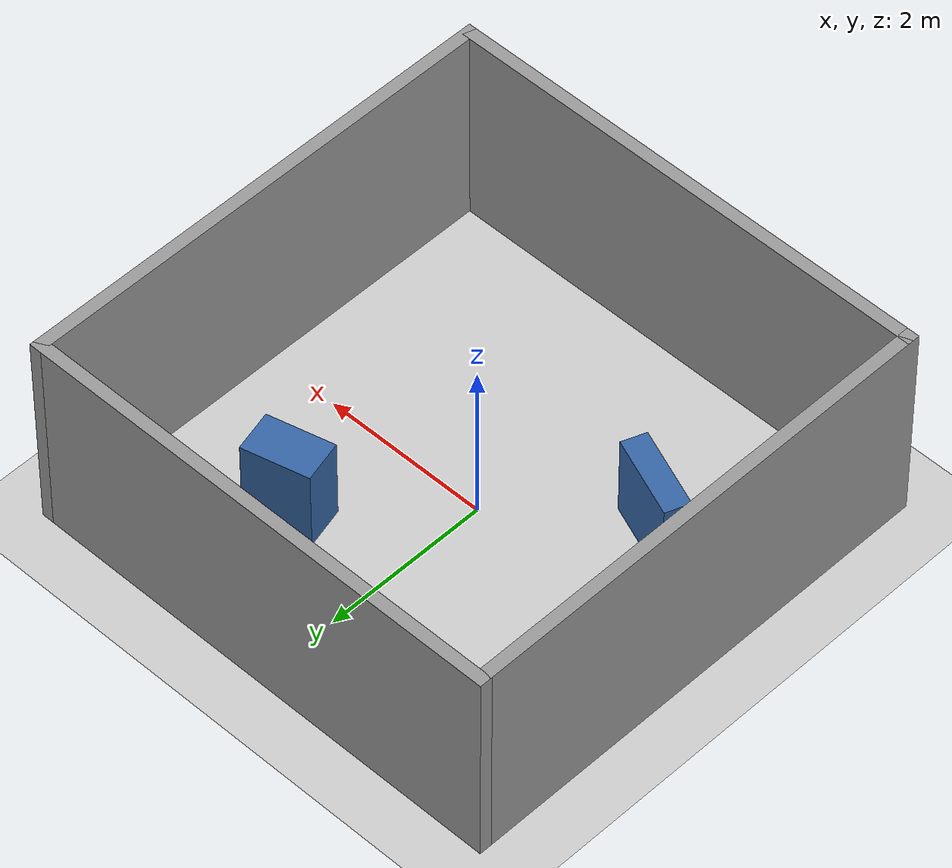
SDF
<sdf version="1.7">
 <world name="default">
  <light name="sun" type="directional">
   <pose>0 0 10 0 -0 0</pose>
   <diffuse>0.8 0.8 0.8 1</diffuse>
   <specular>0.2 0.2 0.2 1</specular>
   <attenuation>
    <range>1000</range>
    <constant>0.9</constant>
    <linear>0.01</linear>
    <quadratic>0.001</quadratic>
   </attenuation>
   <direction>-0.5 0.1 -0.9</direction>
   <spot><inner_angle>0</inner_angle><outer_angle>0</outer_angle><falloff>0</falloff></spot>
  </light>
  <model name="ground_plane">
   <static>1</static>
   <link name="link">
    <collision name="collision">
     <geometry><plane><normal>0 0 1</normal><size>100 100</size></plane></geometry>
     <surface>
      <contact><collide_bitmask>65535</collide_bitmask></contact>
      <friction><ode><mu>100</mu><mu2>50</mu2></ode></friction>
     </surface>
    </collision>
    <visual name="visual">
     <cast_shadows>0</cast_shadows>
     <geometry><plane><normal>0 0 1</normal><size>100 100</size></plane></geometry>
     <material>
      <script><uri>file://media/materials/scripts/gazebo.material</uri><name>Gazebo/Grey</name></script>
     </material>
    </visual>
   </link>
  </model>
  <gravity>0 0 -9.8</gravity>
  <magnetic_field>6e-06 2.3e-05 -4.2e-05</magnetic_field>
  <atmosphere type="adiabatic"/>
  <physics type="ode">
   <max_step_size>0.001</max_step_size>
   <real_time_factor>1</real_time_factor>
   <real_time_update_rate>1000</real_time_update_rate>
  </physics>
  <scene><ambient>0.4 0.4 0.4 1</ambient><background>0.7 0.7 0.7 1</background><shadows>1</shadows></scene>
  <spherical_coordinates>
   <surface_model>EARTH_WGS84</surface_model>
   <latitude_deg>0</latitude_deg>
   <longitude_deg>0</longitude_deg>
   <elevation>0</elevation>
   <heading_deg>0</heading_deg>
  </spherical_coordinates>
  <model name="wall_6_6">
   <pose>0.017248 0.01537 0 0 -0 0</pose>
   <link name="Wall_10">
    <collision name="Wall_10_Collision">
     <geometry><box><size>6 0.15 2.5</size></box></geometry>
     <pose>0 0 1.25 0 -0 0</pose>
    </collision>
    <visual name="Wall_10_Visual">
     <pose>0 0 1.25 0 -0 0</pose>
     <geometry><box><size>6 0.15 2.5</size></box></geometry>
     <material>
      <script><uri>file://media/materials/scripts/gazebo.material</uri><name>Gazebo/Grey</name></script>
      <ambient>1 1 1 1</ambient>
     </material>
     <meta><layer>0</layer></meta>
    </visual>
    <pose>-0 -2.925 0 0 -0 0</pose>
   </link>
   <link name="Wall_11">
    <collision name="Wall_11_Collision">
     <geometry><box><size>6 0.15 2.5</size></box></geometry>
     <pose>0 0 1.25 0 -0 0</pose>
    </collision>
    <visual name="Wall_11_Visual">
     <pose>0 0 1.25 0 -0 0</pose>
     <geometry><box><size>6 0.15 2.5</size></box></geometry>
     <material>
      <script><uri>file://media/materials/scripts/gazebo.material</uri><name>Gazebo/Grey</name></script>
      <ambient>1 1 1 1</ambient>
     </material>
     <meta><layer>0</layer></meta>
    </visual>
    <pose>2.925 0 0 0 -0 1.5708</pose>
   </link>
   <link name="Wall_12">
    <collision name="Wall_12_Collision">
     <geometry><box><size>6 0.15 2.5</size></box></geometry>
     <pose>0 0 1.25 0 -0 0</pose>
    </collision>
    <visual name="Wall_12_Visual">
     <pose>0 0 1.25 0 -0 0</pose>
     <geometry><box><size>6 0.15 2.5</size></box></geometry>
     <material>
      <script><uri>file://media/materials/scripts/gazebo.material</uri><name>Gazebo/Grey</name></script>
      <ambient>1 1 1 1</ambient>
     </material>
     <meta><layer>0</layer></meta>
    </visual>
    <pose>-0 2.925 0 0 -0 3.14159</pose>
   </link>
   <link name="Wall_9">
    <collision name="Wall_9_Collision">
     <geometry><box><size>6 0.15 2.5</size></box></geometry>
     <pose>0 0 1.25 0 -0 0</pose>
    </collision>
    <visual name="Wall_9_Visual">
     <pose>0 0 1.25 0 -0 0</pose>
     <geometry><box><size>6 0.15 2.5</size></box></geometry>
     <material>
      <script><uri>file://media/materials/scripts/gazebo.material</uri><name>Gazebo/Grey</name></script>
      <ambient>1 1 1 1</ambient>
     </material>
     <meta><layer>0</layer></meta>
    </visual>
    <pose>-2.925 0 0 0 -0 -1.5708</pose>
   </link>
   <static>1</static>
  </model>
  <model name="box_08_05">
   <link name="link">
    <inertial>
     <mass>1</mass>
     <inertia>
      <ixx>0.166667</ixx>
      <ixy>0</ixy>
      <ixz>0</ixz>
      <iyy>0.166667</iyy>
      <iyz>0</iyz>
      <izz>0.166667</izz>
     </inertia>
    </inertial>
    <visual name="visual">
     <geometry><box><size>0.8 0.5 1</size></box></geometry>
     <material>
      <script><name>Gazebo/Grey</name><uri>file://media/materials/scripts/gazebo.material</uri></script>
      <shader type="pixel"><normal_map>__default__</normal_map></shader>
      <ambient>0.204 0.396 0.643 1</ambient>
      <diffuse>0.7 0.7 0.7 1</diffuse>
      <specular>0.01 0.01 0.01 1</specular>
      <emissive>0 0 0 1</emissive>
     </material>
    </visual>
    <collision name="collision">
     <geometry><box><size>0.8 0.5 1</size></box></geometry>
     <surface>
      <friction>
       <ode><mu>1</mu><mu2>1</mu2><fdir1>0 0 0</fdir1><slip1>0</slip1><slip2>0</slip2></ode>
       <torsional>
        <coefficient>1</coefficient>
        <patch_radius>0</patch_radius>
        <surface_radius>0</surface_radius>
        <use_patch_radius>1</use_patch_radius>
        <ode><slip>0</slip></ode>
       </torsional>
      </friction>
      <bounce><restitution_coefficient>0</restitution_coefficient><threshold>1e+06</threshold></bounce>
      <contact>
       <collide_without_contact>0</collide_without_contact>
       <collide_without_contact_bitmask>1</collide_without_contact_bitmask>
       <collide_bitmask>1</collide_bitmask>
       <ode>
        <soft_cfm>0</soft_cfm>
        <soft_erp>0.2</soft_erp>
        <kp>1e+13</kp>
        <kd>1</kd>
        <max_vel>0.01</max_vel>
        <min_depth>0</min_depth>
       </ode>
       <bullet>
        <split_impulse>1</split_impulse>
        <split_impulse_penetration_threshold>-0.01</split_impulse_penetration_threshold>
        <soft_cfm>0</soft_cfm>
        <soft_erp>0.2</soft_erp>
        <kp>1e+13</kp>
        <kd>1</kd>
       </bullet>
      </contact>
     </surface>
    </collision>
   </link>
   <static>0</static>
   <pose>1.29242 1.30661 0.5 0 -0 0.249603</pose>
  </model>
  <model name="box_10_03">
   <link name="link">
    <inertial>
     <mass>1</mass>
     <inertia>
      <ixx>0.166667</ixx>
      <ixy>0</ixy>
      <ixz>0</ixz>
      <iyy>0.166667</iyy>
      <iyz>0</iyz>
      <izz>0.166667</izz>
     </inertia>
    </inertial>
    <visual name="visual">
     <geometry><box><size>1 0.3 1</size></box></geometry>
     <material>
      <script><name>Gazebo/Grey</name><uri>file://media/materials/scripts/gazebo.material</uri></script>
      <shader type="pixel"><normal_map>__default__</normal_map></shader>
      <ambient>0.204 0.396 0.643 1</ambient>
      <diffuse>0.7 0.7 0.7 1</diffuse>
      <specular>0.01 0.01 0.01 1</specular>
      <emissive>0 0 0 1</emissive>
     </material>
    </visual>
    <collision name="collision">
     <geometry><box><size>1 0.3 1</size></box></geometry>
     <surface>
      <friction>
       <ode><mu>1</mu><mu2>1</mu2><fdir1>0 0 0</fdir1><slip1>0</slip1><slip2>0</slip2></ode>
       <torsional>
        <coefficient>1</coefficient>
        <patch_radius>0</patch_radius>
        <surface_radius>0</surface_radius>
        <use_patch_radius>1</use_patch_radius>
        <ode><slip>0</slip></ode>
       </torsional>
      </friction>
      <bounce><restitution_coefficient>0</restitution_coefficient><threshold>1e+06</threshold></bounce>
      <contact>
       <collide_without_contact>0</collide_without_contact>
       <collide_without_contact_bitmask>1</collide_without_contact_bitmask>
       <collide_bitmask>1</collide_bitmask>
       <ode>
        <soft_cfm>0</soft_cfm>
        <soft_erp>0.2</soft_erp>
        <kp>1e+13</kp>
        <kd>1</kd>
        <max_vel>0.01</max_vel>
        <min_depth>0</min_depth>
       </ode>
       <bullet>
        <split_impulse>1</split_impulse>
        <split_impulse_penetration_threshold>-0.01</split_impulse_penetration_threshold>
        <soft_cfm>0</soft_cfm>
        <soft_erp>0.2</soft_erp>
        <kp>1e+13</kp>
        <kd>1</kd>
       </bullet>
      </contact>
     </surface>
    </collision>
   </link>
   <static>0</static>
   <pose>-1.49633 -0.94177 0.5 0 0 -0.373166</pose>
  </model>
 </world>
</sdf>
